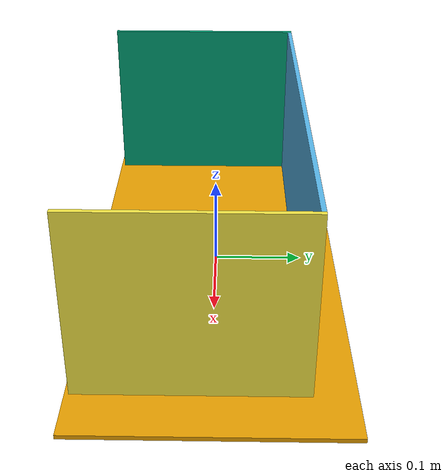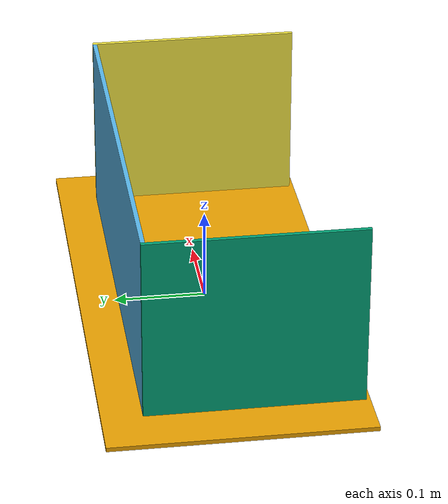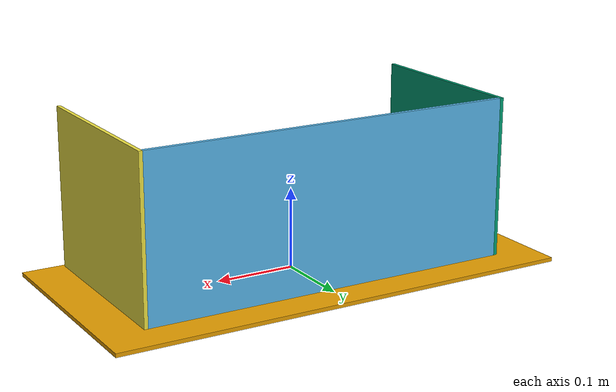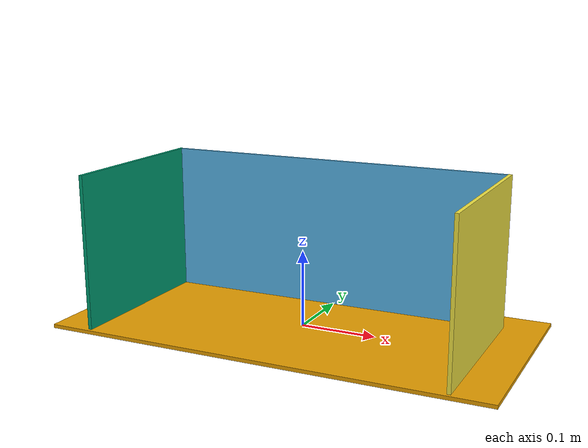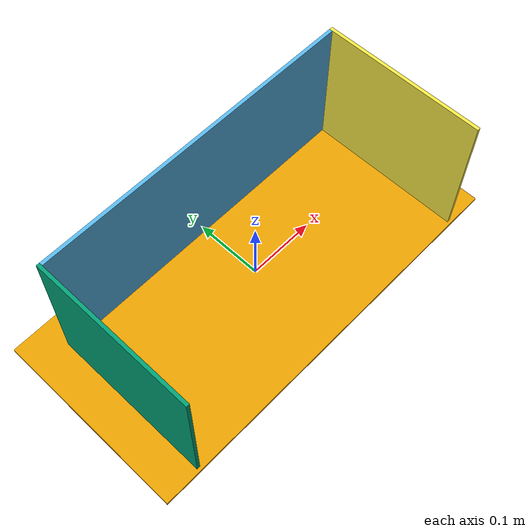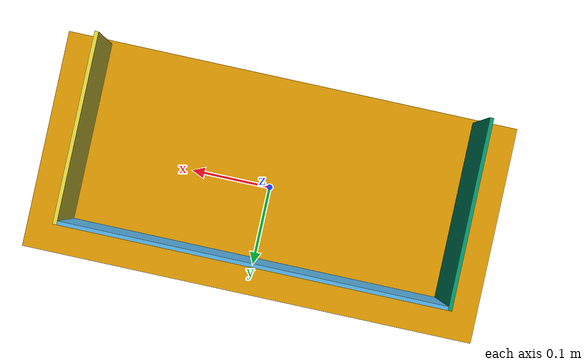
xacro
<?xml version="1.0"?>
<robot name="superchick" xmlns:xacro="http://www.ros.org/wiki/xacro">

	<!-- Description: Head Cage

	 Author: Alex Tomkovich, September 27, 2016
	 Modified: Lekan Ogunmolu Nov. 18, 2016
 	-->

	<!-- Panel Properties -->
	<xacro:property name="side_panel_length" value=".231775" />
	<xacro:property name="panel_12_oc_length" value=".4700" />

	<xacro:property name="panel_height" value=".200025" />
	<xacro:property name="panel_thickness" value=".0047625" />
	<xacro:property name="base_panel_length" value=".5842" />
	<xacro:property name="base_panel_width" value=".2794" />
	<xacro:property name ="distance_panel_12_oc_from_center" value ="${(base_panel_width/2) - .04572}" />

	<link name="base_panel">
		<visual>
			<geometry>
				<box size="${base_panel_length} ${base_panel_width} ${panel_thickness}" />
			</geometry>
			<origin xyz="0 0 0" rpy="0 0 0" />
			<material name="panel_color" />
		</visual>

		<collision>
			<geometry>
				<box size="${base_panel_length} ${base_panel_width} ${panel_thickness}" />
			</geometry>
			<origin xyz="0 0 0" rpy="0 0 0" />
		</collision>

		<inertial>
		  <mass value="${mass}"/>
		  <inertia ixx="${mass/12}" ixy="0.0" ixz="0.0"
		   iyy="${inertia_mom}" iyz="0.0000"
		   izz="${inertia_mom}"/>
		</inertial>
	</link>

	<!-- 12:00 panel -->
	<link name="panel_12_oc">
		<visual>
			<geometry>
				<box size="${panel_12_oc_length} ${panel_height} ${panel_thickness}" />
			</geometry>
			<material name="panel_color" />
			<origin xyz="0 0 0" rpy="${(M_PI/2)} 0 0" />
		</visual>

		<collision>
			<geometry>
				<box size="${panel_12_oc_length} ${panel_height} ${panel_thickness}" />
			</geometry>
			<origin xyz="0 0 0" rpy="${(M_PI/2)} 0 0" />
		</collision>

		<inertial>
		  <mass value="${mass}"/>
		  <inertia ixx="${mass/12}" ixy="0.0" ixz="0.0"
		   iyy="${inertia_mom}" iyz="0.0000"
		   izz="${inertia_mom}"/>
		</inertial>
	</link>

	<!-- Join 12:00 Panel to base_panel -->
	<joint name="base_panel_to_12oc" type="fixed">
		<parent link="base_panel"/>
		<child link="panel_12_oc"/>
		<origin xyz="0 ${distance_panel_12_oc_from_center} ${(panel_thickness/2) + (panel_height/2)}" />
	</joint>

	<!-- 9:00 Panel -->
	<link name="panel_9_oc">
		<visual>
			<origin xyz="0 0 0" rpy="${(M_PI/2)} 0 ${(M_PI/2)}" />
			<geometry>
				<box size="${side_panel_length} ${panel_height} ${panel_thickness}" />
			</geometry>
			<material name="panel_color" />
		</visual>

		<collision>
			<geometry>
				<box size="${side_panel_length} ${panel_height} ${panel_thickness}" />
			</geometry>
			<origin xyz="0 0 0" rpy="${(M_PI/2)} 0 ${(M_PI/2)}" />
		</collision>

		<inertial>
		  <mass value="${mass}"/>
		  <inertia ixx="${mass/12}" ixy="0.0" ixz="0.0"
		   iyy="${inertia_mom}" iyz="0.0000"
		   izz="${inertia_mom}"/>
		</inertial>
	</link>

	<!-- Join 9:00 Panel to 12:00 Panel -->
	<joint name="12oc_to_9oc" type="fixed">
		<parent link="panel_12_oc"/>
		<child link="panel_9_oc"/>
		<origin xyz="${-((panel_12_oc_length/2) + (panel_thickness/2))} ${-((side_panel_length/2) - (panel_thickness/2))} 0" />
	</joint>

	<!-- 3:00 Panel -->
	<link name="panel_3_oc">
		<visual>
			<origin xyz="0 0 0" rpy="${(M_PI/2)} 0 ${(M_PI/2)}" />
			<geometry>
				<box size="${side_panel_length} ${panel_height} ${panel_thickness}" />
			</geometry>
			<material name="panel_color" />
		</visual>
		<collision>
			<geometry>
				<box size="${side_panel_length} ${panel_height} ${panel_thickness}" />
			</geometry>
			<origin xyz="0 0 0" rpy="${(M_PI/2)} 0 ${(M_PI/2)}" />
		</collision>

		<inertial>
		  <mass value="${mass}"/>
		  <inertia ixx="${mass/12}" ixy="0.0" ixz="0.0"
		   iyy="${inertia_mom}" iyz="0.0000"
		   izz="${inertia_mom}"/>
		</inertial>
	</link>

	<!-- Join 3:00 Panel to 12:00 Panel -->
	<joint name="12oc_to_3oc" type="fixed">
		<parent link="panel_12_oc"/>
		<child link="panel_3_oc"/>
		<origin xyz="${(panel_12_oc_length/2) + (panel_thickness/2)} ${-((side_panel_length/2) - (panel_thickness/2))} 0" />
	</joint>

</robot>
